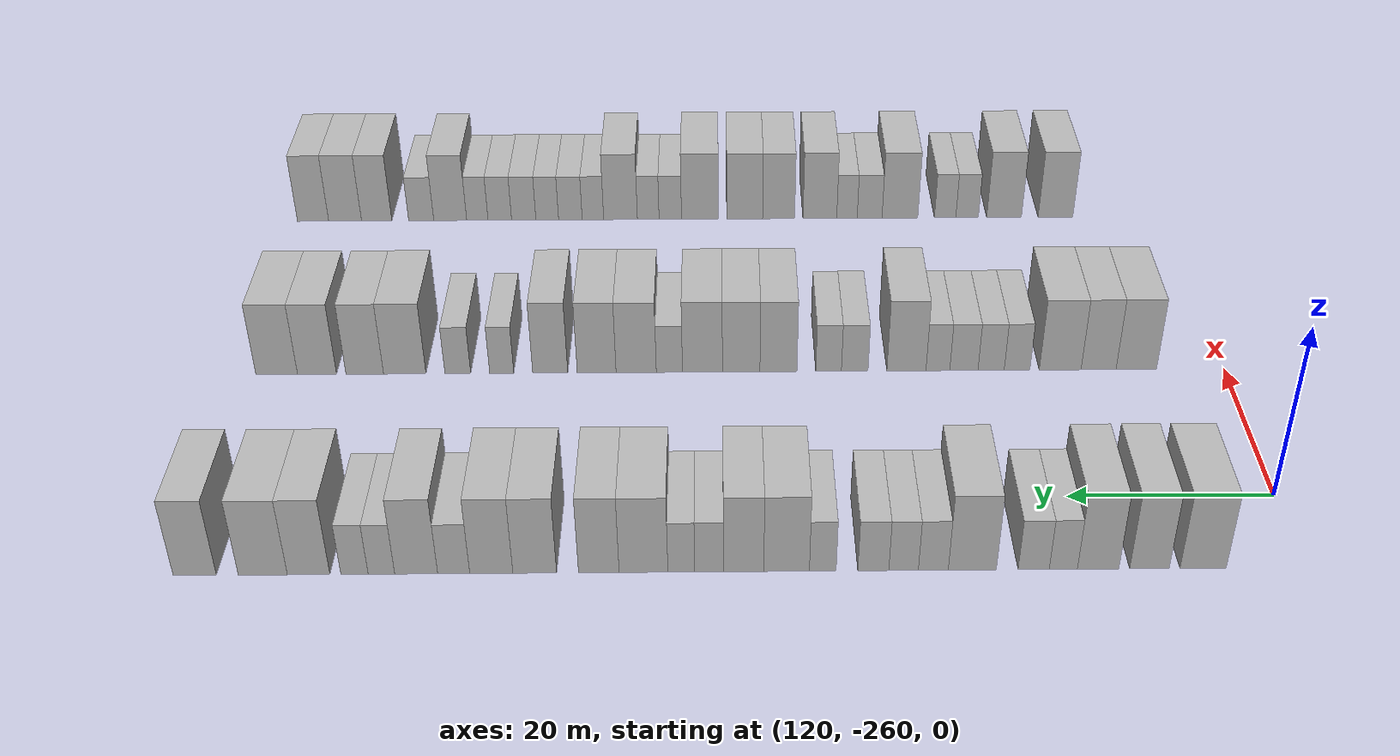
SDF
<sdf version="1.6">
 <world name="default">
  <model name="building_742">
   <static>1</static>
   <pose>115.0000 -250.8697 0 0.000000 0.000000 0.000000</pose>
   <link name="link">
    <pose>0 0 4.50 0 0 0</pose>
    <collision name="collision"><geometry><box><size>10.0000 4.2609 9.0000</size></box></geometry></collision>
    <visual name="visual">
     <cast_shadows>0</cast_shadows>
     <geometry><box><size>10.0000 4.2609 9.0000</size></box></geometry>
     <material>
      <script>
       <uri>model://HANNAS_wall/materials/scripts</uri>
       <uri>model://HANNAS_wall/materials/textures</uri>
       <name>vrc/HANNAS_wall</name>
      </script>
     </material>
    </visual>
   </link>
  </model>
  <model name="building_743">
   <static>1</static>
   <pose>115.0000 -245.9235 0 0.000000 0.000000 0.000000</pose>
   <link name="link">
    <pose>0 0 4.50 0 0 0</pose>
    <collision name="collision"><geometry><box><size>10.0000 3.6315 9.0000</size></box></geometry></collision>
    <visual name="visual">
     <cast_shadows>0</cast_shadows>
     <geometry><box><size>10.0000 3.6315 9.0000</size></box></geometry>
     <material>
      <script>
       <uri>model://HANNAS_wall/materials/scripts</uri>
       <uri>model://HANNAS_wall/materials/textures</uri>
       <name>vrc/HANNAS_wall</name>
      </script>
     </material>
    </visual>
   </link>
  </model>
  <model name="building_744">
   <static>1</static>
   <pose>115.0000 -241.2004 0 0.000000 0.000000 0.000000</pose>
   <link name="link">
    <pose>0 0 4.50 0 0 0</pose>
    <collision name="collision"><geometry><box><size>10.0000 3.8149 9.0000</size></box></geometry></collision>
    <visual name="visual">
     <cast_shadows>0</cast_shadows>
     <geometry><box><size>10.0000 3.8149 9.0000</size></box></geometry>
     <material>
      <script>
       <uri>model://HANNAS_wall/materials/scripts</uri>
       <uri>model://HANNAS_wall/materials/textures</uri>
       <name>vrc/HANNAS_wall</name>
      </script>
     </material>
    </visual>
   </link>
  </model>
  <model name="building_745">
   <static>1</static>
   <pose>115.0000 -237.9975 0 0.000000 0.000000 0.000000</pose>
   <link name="link">
    <pose>0 0 3.00 0 0 0</pose>
    <collision name="collision"><geometry><box><size>10.0000 2.5910 6.0000</size></box></geometry></collision>
    <visual name="visual">
     <cast_shadows>0</cast_shadows>
     <geometry><box><size>10.0000 2.5910 6.0000</size></box></geometry>
     <material>
      <script>
       <uri>model://HANNAS_wall/materials/scripts</uri>
       <uri>model://HANNAS_wall/materials/textures</uri>
       <name>vrc/HANNAS_wall</name>
      </script>
     </material>
    </visual>
   </link>
  </model>
  <model name="building_746">
   <static>1</static>
   <pose>115.0000 -235.2722 0 0.000000 0.000000 0.000000</pose>
   <link name="link">
    <pose>0 0 3.00 0 0 0</pose>
    <collision name="collision"><geometry><box><size>10.0000 2.8596 6.0000</size></box></geometry></collision>
    <visual name="visual">
     <cast_shadows>0</cast_shadows>
     <geometry><box><size>10.0000 2.8596 6.0000</size></box></geometry>
     <material>
      <script>
       <uri>model://HANNAS_wall/materials/scripts</uri>
       <uri>model://HANNAS_wall/materials/textures</uri>
       <name>vrc/HANNAS_wall</name>
      </script>
     </material>
    </visual>
   </link>
  </model>
  <model name="building_747">
   <static>1</static>
   <pose>115.0000 -229.6313 0 0.000000 0.000000 0.000000</pose>
   <link name="link">
    <pose>0 0 4.50 0 0 0</pose>
    <collision name="collision"><geometry><box><size>10.0000 4.4220 9.0000</size></box></geometry></collision>
    <visual name="visual">
     <cast_shadows>0</cast_shadows>
     <geometry><box><size>10.0000 4.4220 9.0000</size></box></geometry>
     <material>
      <script>
       <uri>model://HANNAS_wall/materials/scripts</uri>
       <uri>model://HANNAS_wall/materials/textures</uri>
       <name>vrc/HANNAS_wall</name>
      </script>
     </material>
    </visual>
   </link>
  </model>
  <model name="building_748">
   <static>1</static>
   <pose>115.0000 -226.0481 0 0.000000 0.000000 0.000000</pose>
   <link name="link">
    <pose>0 0 3.00 0 0 0</pose>
    <collision name="collision"><geometry><box><size>10.0000 2.7444 6.0000</size></box></geometry></collision>
    <visual name="visual">
     <cast_shadows>0</cast_shadows>
     <geometry><box><size>10.0000 2.7444 6.0000</size></box></geometry>
     <material>
      <script>
       <uri>model://HANNAS_wall/materials/scripts</uri>
       <uri>model://HANNAS_wall/materials/textures</uri>
       <name>vrc/HANNAS_wall</name>
      </script>
     </material>
    </visual>
   </link>
  </model>
  <model name="building_749">
   <static>1</static>
   <pose>115.0000 -223.3166 0 0.000000 0.000000 0.000000</pose>
   <link name="link">
    <pose>0 0 3.00 0 0 0</pose>
    <collision name="collision"><geometry><box><size>10.0000 2.7187 6.0000</size></box></geometry></collision>
    <visual name="visual">
     <cast_shadows>0</cast_shadows>
     <geometry><box><size>10.0000 2.7187 6.0000</size></box></geometry>
     <material>
      <script>
       <uri>model://HANNAS_wall/materials/scripts</uri>
       <uri>model://HANNAS_wall/materials/textures</uri>
       <name>vrc/HANNAS_wall</name>
      </script>
     </material>
    </visual>
   </link>
  </model>
  <model name="building_750">
   <static>1</static>
   <pose>115.0000 -220.5386 0 0.000000 0.000000 0.000000</pose>
   <link name="link">
    <pose>0 0 3.00 0 0 0</pose>
    <collision name="collision"><geometry><box><size>10.0000 2.8372 6.0000</size></box></geometry></collision>
    <visual name="visual">
     <cast_shadows>0</cast_shadows>
     <geometry><box><size>10.0000 2.8372 6.0000</size></box></geometry>
     <material>
      <script>
       <uri>model://HANNAS_wall/materials/scripts</uri>
       <uri>model://HANNAS_wall/materials/textures</uri>
       <name>vrc/HANNAS_wall</name>
      </script>
     </material>
    </visual>
   </link>
  </model>
  <model name="building_751">
   <static>1</static>
   <pose>115.0000 -215.8957 0 0.000000 0.000000 0.000000</pose>
   <link name="link">
    <pose>0 0 3.00 0 0 0</pose>
    <collision name="collision"><geometry><box><size>10.0000 2.4486 6.0000</size></box></geometry></collision>
    <visual name="visual">
     <cast_shadows>0</cast_shadows>
     <geometry><box><size>10.0000 2.4486 6.0000</size></box></geometry>
     <material>
      <script>
       <uri>model://HANNAS_wall/materials/scripts</uri>
       <uri>model://HANNAS_wall/materials/textures</uri>
       <name>vrc/HANNAS_wall</name>
      </script>
     </material>
    </visual>
   </link>
  </model>
  <model name="building_752">
   <static>1</static>
   <pose>115.0000 -212.5783 0 0.000000 0.000000 0.000000</pose>
   <link name="link">
    <pose>0 0 4.50 0 0 0</pose>
    <collision name="collision"><geometry><box><size>10.0000 4.1863 9.0000</size></box></geometry></collision>
    <visual name="visual">
     <cast_shadows>0</cast_shadows>
     <geometry><box><size>10.0000 4.1863 9.0000</size></box></geometry>
     <material>
      <script>
       <uri>model://HANNAS_wall/materials/scripts</uri>
       <uri>model://HANNAS_wall/materials/textures</uri>
       <name>vrc/HANNAS_wall</name>
      </script>
     </material>
    </visual>
   </link>
  </model>
  <model name="building_753">
   <static>1</static>
   <pose>115.0000 -208.6427 0 0.000000 0.000000 0.000000</pose>
   <link name="link">
    <pose>0 0 4.50 0 0 0</pose>
    <collision name="collision"><geometry><box><size>10.0000 3.6849 9.0000</size></box></geometry></collision>
    <visual name="visual">
     <cast_shadows>0</cast_shadows>
     <geometry><box><size>10.0000 3.6849 9.0000</size></box></geometry>
     <material>
      <script>
       <uri>model://HANNAS_wall/materials/scripts</uri>
       <uri>model://HANNAS_wall/materials/textures</uri>
       <name>vrc/HANNAS_wall</name>
      </script>
     </material>
    </visual>
   </link>
  </model>
  <model name="building_754">
   <static>1</static>
   <pose>115.0000 -205.4805 0 0.000000 0.000000 0.000000</pose>
   <link name="link">
    <pose>0 0 3.00 0 0 0</pose>
    <collision name="collision"><geometry><box><size>10.0000 2.6394 6.0000</size></box></geometry></collision>
    <visual name="visual">
     <cast_shadows>0</cast_shadows>
     <geometry><box><size>10.0000 2.6394 6.0000</size></box></geometry>
     <material>
      <script>
       <uri>model://HANNAS_wall/materials/scripts</uri>
       <uri>model://HANNAS_wall/materials/textures</uri>
       <name>vrc/HANNAS_wall</name>
      </script>
     </material>
    </visual>
   </link>
  </model>
  <model name="building_755">
   <static>1</static>
   <pose>115.0000 -202.9286 0 0.000000 0.000000 0.000000</pose>
   <link name="link">
    <pose>0 0 3.00 0 0 0</pose>
    <collision name="collision"><geometry><box><size>10.0000 2.4644 6.0000</size></box></geometry></collision>
    <visual name="visual">
     <cast_shadows>0</cast_shadows>
     <geometry><box><size>10.0000 2.4644 6.0000</size></box></geometry>
     <material>
      <script>
       <uri>model://HANNAS_wall/materials/scripts</uri>
       <uri>model://HANNAS_wall/materials/textures</uri>
       <name>vrc/HANNAS_wall</name>
      </script>
     </material>
    </visual>
   </link>
  </model>
  <model name="building_756">
   <static>1</static>
   <pose>115.0000 -199.4611 0 0.000000 0.000000 0.000000</pose>
   <link name="link">
    <pose>0 0 4.50 0 0 0</pose>
    <collision name="collision"><geometry><box><size>10.0000 4.4707 9.0000</size></box></geometry></collision>
    <visual name="visual">
     <cast_shadows>0</cast_shadows>
     <geometry><box><size>10.0000 4.4707 9.0000</size></box></geometry>
     <material>
      <script>
       <uri>model://HANNAS_wall/materials/scripts</uri>
       <uri>model://HANNAS_wall/materials/textures</uri>
       <name>vrc/HANNAS_wall</name>
      </script>
     </material>
    </visual>
   </link>
  </model>
  <model name="building_757">
   <static>1</static>
   <pose>115.0000 -195.3677 0 0.000000 0.000000 0.000000</pose>
   <link name="link">
    <pose>0 0 4.50 0 0 0</pose>
    <collision name="collision"><geometry><box><size>10.0000 3.7162 9.0000</size></box></geometry></collision>
    <visual name="visual">
     <cast_shadows>0</cast_shadows>
     <geometry><box><size>10.0000 3.7162 9.0000</size></box></geometry>
     <material>
      <script>
       <uri>model://HANNAS_wall/materials/scripts</uri>
       <uri>model://HANNAS_wall/materials/textures</uri>
       <name>vrc/HANNAS_wall</name>
      </script>
     </material>
    </visual>
   </link>
  </model>
  <model name="building_758">
   <static>1</static>
   <pose>115.0000 -189.5050 0 0.000000 0.000000 0.000000</pose>
   <link name="link">
    <pose>0 0 4.50 0 0 0</pose>
    <collision name="collision"><geometry><box><size>10.0000 4.0091 9.0000</size></box></geometry></collision>
    <visual name="visual">
     <cast_shadows>0</cast_shadows>
     <geometry><box><size>10.0000 4.0091 9.0000</size></box></geometry>
     <material>
      <script>
       <uri>model://HANNAS_wall/materials/scripts</uri>
       <uri>model://HANNAS_wall/materials/textures</uri>
       <name>vrc/HANNAS_wall</name>
      </script>
     </material>
    </visual>
   </link>
  </model>
  <model name="building_759">
   <static>1</static>
   <pose>115.0000 -185.5270 0 0.000000 0.000000 0.000000</pose>
   <link name="link">
    <pose>0 0 4.50 0 0 0</pose>
    <collision name="collision"><geometry><box><size>10.0000 3.9469 9.0000</size></box></geometry></collision>
    <visual name="visual">
     <cast_shadows>0</cast_shadows>
     <geometry><box><size>10.0000 3.9469 9.0000</size></box></geometry>
     <material>
      <script>
       <uri>model://HANNAS_wall/materials/scripts</uri>
       <uri>model://HANNAS_wall/materials/textures</uri>
       <name>vrc/HANNAS_wall</name>
      </script>
     </material>
    </visual>
   </link>
  </model>
  <model name="building_760">
   <static>1</static>
   <pose>115.0000 -182.0898 0 0.000000 0.000000 0.000000</pose>
   <link name="link">
    <pose>0 0 3.00 0 0 0</pose>
    <collision name="collision"><geometry><box><size>10.0000 2.9276 6.0000</size></box></geometry></collision>
    <visual name="visual">
     <cast_shadows>0</cast_shadows>
     <geometry><box><size>10.0000 2.9276 6.0000</size></box></geometry>
     <material>
      <script>
       <uri>model://HANNAS_wall/materials/scripts</uri>
       <uri>model://HANNAS_wall/materials/textures</uri>
       <name>vrc/HANNAS_wall</name>
      </script>
     </material>
    </visual>
   </link>
  </model>
  <model name="building_761">
   <static>1</static>
   <pose>115.0000 -178.6595 0 0.000000 0.000000 0.000000</pose>
   <link name="link">
    <pose>0 0 4.50 0 0 0</pose>
    <collision name="collision"><geometry><box><size>10.0000 3.9330 9.0000</size></box></geometry></collision>
    <visual name="visual">
     <cast_shadows>0</cast_shadows>
     <geometry><box><size>10.0000 3.9330 9.0000</size></box></geometry>
     <material>
      <script>
       <uri>model://HANNAS_wall/materials/scripts</uri>
       <uri>model://HANNAS_wall/materials/textures</uri>
       <name>vrc/HANNAS_wall</name>
      </script>
     </material>
    </visual>
   </link>
  </model>
  <model name="building_762">
   <static>1</static>
   <pose>115.0000 -175.4794 0 0.000000 0.000000 0.000000</pose>
   <link name="link">
    <pose>0 0 3.00 0 0 0</pose>
    <collision name="collision"><geometry><box><size>10.0000 2.4271 6.0000</size></box></geometry></collision>
    <visual name="visual">
     <cast_shadows>0</cast_shadows>
     <geometry><box><size>10.0000 2.4271 6.0000</size></box></geometry>
     <material>
      <script>
       <uri>model://HANNAS_wall/materials/scripts</uri>
       <uri>model://HANNAS_wall/materials/textures</uri>
       <name>vrc/HANNAS_wall</name>
      </script>
     </material>
    </visual>
   </link>
  </model>
  <model name="building_763">
   <static>1</static>
   <pose>115.0000 -173.0204 0 0.000000 0.000000 0.000000</pose>
   <link name="link">
    <pose>0 0 3.00 0 0 0</pose>
    <collision name="collision"><geometry><box><size>10.0000 2.4908 6.0000</size></box></geometry></collision>
    <visual name="visual">
     <cast_shadows>0</cast_shadows>
     <geometry><box><size>10.0000 2.4908 6.0000</size></box></geometry>
     <material>
      <script>
       <uri>model://HANNAS_wall/materials/scripts</uri>
       <uri>model://HANNAS_wall/materials/textures</uri>
       <name>vrc/HANNAS_wall</name>
      </script>
     </material>
    </visual>
   </link>
  </model>
  <model name="building_764">
   <static>1</static>
   <pose>115.0000 -168.8340 0 0.000000 0.000000 0.000000</pose>
   <link name="link">
    <pose>0 0 4.50 0 0 0</pose>
    <collision name="collision"><geometry><box><size>10.0000 3.8819 9.0000</size></box></geometry></collision>
    <visual name="visual">
     <cast_shadows>0</cast_shadows>
     <geometry><box><size>10.0000 3.8819 9.0000</size></box></geometry>
     <material>
      <script>
       <uri>model://HANNAS_wall/materials/scripts</uri>
       <uri>model://HANNAS_wall/materials/textures</uri>
       <name>vrc/HANNAS_wall</name>
      </script>
     </material>
    </visual>
   </link>
  </model>
  <model name="building_765">
   <static>1</static>
   <pose>115.0000 -164.6539 0 0.000000 0.000000 0.000000</pose>
   <link name="link">
    <pose>0 0 4.50 0 0 0</pose>
    <collision name="collision"><geometry><box><size>10.0000 4.4783 9.0000</size></box></geometry></collision>
    <visual name="visual">
     <cast_shadows>0</cast_shadows>
     <geometry><box><size>10.0000 4.4783 9.0000</size></box></geometry>
     <material>
      <script>
       <uri>model://HANNAS_wall/materials/scripts</uri>
       <uri>model://HANNAS_wall/materials/textures</uri>
       <name>vrc/HANNAS_wall</name>
      </script>
     </material>
    </visual>
   </link>
  </model>
  <model name="building_766">
   <static>1</static>
   <pose>115.0000 -158.4429 0 0.000000 0.000000 0.000000</pose>
   <link name="link">
    <pose>0 0 4.50 0 0 0</pose>
    <collision name="collision"><geometry><box><size>10.0000 3.9437 9.0000</size></box></geometry></collision>
    <visual name="visual">
     <cast_shadows>0</cast_shadows>
     <geometry><box><size>10.0000 3.9437 9.0000</size></box></geometry>
     <material>
      <script>
       <uri>model://HANNAS_wall/materials/scripts</uri>
       <uri>model://HANNAS_wall/materials/textures</uri>
       <name>vrc/HANNAS_wall</name>
      </script>
     </material>
    </visual>
   </link>
  </model>
  <model name="building_974">
   <static>1</static>
   <pose>145.0000 -250.6786 0 0.000000 0.000000 0.000000</pose>
   <link name="link">
    <pose>0 0 4.50 0 0 0</pose>
    <collision name="collision"><geometry><box><size>10.0000 4.3003 9.0000</size></box></geometry></collision>
    <visual name="visual">
     <cast_shadows>0</cast_shadows>
     <geometry><box><size>10.0000 4.3003 9.0000</size></box></geometry>
     <material>
      <script>
       <uri>model://HANNAS_wall/materials/scripts</uri>
       <uri>model://HANNAS_wall/materials/textures</uri>
       <name>vrc/HANNAS_wall</name>
      </script>
     </material>
    </visual>
   </link>
  </model>
  <model name="building_975">
   <static>1</static>
   <pose>145.0000 -246.6720 0 0.000000 0.000000 0.000000</pose>
   <link name="link">
    <pose>0 0 4.50 0 0 0</pose>
    <collision name="collision"><geometry><box><size>10.0000 3.7129 9.0000</size></box></geometry></collision>
    <visual name="visual">
     <cast_shadows>0</cast_shadows>
     <geometry><box><size>10.0000 3.7129 9.0000</size></box></geometry>
     <material>
      <script>
       <uri>model://HANNAS_wall/materials/scripts</uri>
       <uri>model://HANNAS_wall/materials/textures</uri>
       <name>vrc/HANNAS_wall</name>
      </script>
     </material>
    </visual>
   </link>
  </model>
  <model name="building_976">
   <static>1</static>
   <pose>145.0000 -242.6016 0 0.000000 0.000000 0.000000</pose>
   <link name="link">
    <pose>0 0 4.50 0 0 0</pose>
    <collision name="collision"><geometry><box><size>10.0000 4.4280 9.0000</size></box></geometry></collision>
    <visual name="visual">
     <cast_shadows>0</cast_shadows>
     <geometry><box><size>10.0000 4.4280 9.0000</size></box></geometry>
     <material>
      <script>
       <uri>model://HANNAS_wall/materials/scripts</uri>
       <uri>model://HANNAS_wall/materials/textures</uri>
       <name>vrc/HANNAS_wall</name>
      </script>
     </material>
    </visual>
   </link>
  </model>
  <model name="building_977">
   <static>1</static>
   <pose>145.0000 -238.0266 0 0.000000 0.000000 0.000000</pose>
   <link name="link">
    <pose>0 0 3.00 0 0 0</pose>
    <collision name="collision"><geometry><box><size>10.0000 2.7218 6.0000</size></box></geometry></collision>
    <visual name="visual">
     <cast_shadows>0</cast_shadows>
     <geometry><box><size>10.0000 2.7218 6.0000</size></box></geometry>
     <material>
      <script>
       <uri>model://HANNAS_wall/materials/scripts</uri>
       <uri>model://HANNAS_wall/materials/textures</uri>
       <name>vrc/HANNAS_wall</name>
      </script>
     </material>
    </visual>
   </link>
  </model>
  <model name="building_978">
   <static>1</static>
   <pose>145.0000 -235.2754 0 0.000000 0.000000 0.000000</pose>
   <link name="link">
    <pose>0 0 3.00 0 0 0</pose>
    <collision name="collision"><geometry><box><size>10.0000 2.7806 6.0000</size></box></geometry></collision>
    <visual name="visual">
     <cast_shadows>0</cast_shadows>
     <geometry><box><size>10.0000 2.7806 6.0000</size></box></geometry>
     <material>
      <script>
       <uri>model://HANNAS_wall/materials/scripts</uri>
       <uri>model://HANNAS_wall/materials/textures</uri>
       <name>vrc/HANNAS_wall</name>
      </script>
     </material>
    </visual>
   </link>
  </model>
  <model name="building_979">
   <static>1</static>
   <pose>145.0000 -232.3934 0 0.000000 0.000000 0.000000</pose>
   <link name="link">
    <pose>0 0 3.00 0 0 0</pose>
    <collision name="collision"><geometry><box><size>10.0000 2.9834 6.0000</size></box></geometry></collision>
    <visual name="visual">
     <cast_shadows>0</cast_shadows>
     <geometry><box><size>10.0000 2.9834 6.0000</size></box></geometry>
     <material>
      <script>
       <uri>model://HANNAS_wall/materials/scripts</uri>
       <uri>model://HANNAS_wall/materials/textures</uri>
       <name>vrc/HANNAS_wall</name>
      </script>
     </material>
    </visual>
   </link>
  </model>
  <model name="building_980">
   <static>1</static>
   <pose>145.0000 -229.6385 0 0.000000 0.000000 0.000000</pose>
   <link name="link">
    <pose>0 0 3.00 0 0 0</pose>
    <collision name="collision"><geometry><box><size>10.0000 2.5264 6.0000</size></box></geometry></collision>
    <visual name="visual">
     <cast_shadows>0</cast_shadows>
     <geometry><box><size>10.0000 2.5264 6.0000</size></box></geometry>
     <material>
      <script>
       <uri>model://HANNAS_wall/materials/scripts</uri>
       <uri>model://HANNAS_wall/materials/textures</uri>
       <name>vrc/HANNAS_wall</name>
      </script>
     </material>
    </visual>
   </link>
  </model>
  <model name="building_981">
   <static>1</static>
   <pose>145.0000 -226.3077 0 0.000000 0.000000 0.000000</pose>
   <link name="link">
    <pose>0 0 4.50 0 0 0</pose>
    <collision name="collision"><geometry><box><size>10.0000 4.1351 9.0000</size></box></geometry></collision>
    <visual name="visual">
     <cast_shadows>0</cast_shadows>
     <geometry><box><size>10.0000 4.1351 9.0000</size></box></geometry>
     <material>
      <script>
       <uri>model://HANNAS_wall/materials/scripts</uri>
       <uri>model://HANNAS_wall/materials/textures</uri>
       <name>vrc/HANNAS_wall</name>
      </script>
     </material>
    </visual>
   </link>
  </model>
  <model name="building_982">
   <static>1</static>
   <pose>145.0000 -220.8311 0 0.000000 0.000000 0.000000</pose>
   <link name="link">
    <pose>0 0 3.00 0 0 0</pose>
    <collision name="collision"><geometry><box><size>10.0000 2.8182 6.0000</size></box></geometry></collision>
    <visual name="visual">
     <cast_shadows>0</cast_shadows>
     <geometry><box><size>10.0000 2.8182 6.0000</size></box></geometry>
     <material>
      <script>
       <uri>model://HANNAS_wall/materials/scripts</uri>
       <uri>model://HANNAS_wall/materials/textures</uri>
       <name>vrc/HANNAS_wall</name>
      </script>
     </material>
    </visual>
   </link>
  </model>
  <model name="building_983">
   <static>1</static>
   <pose>145.0000 -218.0703 0 0.000000 0.000000 0.000000</pose>
   <link name="link">
    <pose>0 0 3.00 0 0 0</pose>
    <collision name="collision"><geometry><box><size>10.0000 2.7033 6.0000</size></box></geometry></collision>
    <visual name="visual">
     <cast_shadows>0</cast_shadows>
     <geometry><box><size>10.0000 2.7033 6.0000</size></box></geometry>
     <material>
      <script>
       <uri>model://HANNAS_wall/materials/scripts</uri>
       <uri>model://HANNAS_wall/materials/textures</uri>
       <name>vrc/HANNAS_wall</name>
      </script>
     </material>
    </visual>
   </link>
  </model>
  <model name="building_984">
   <static>1</static>
   <pose>145.0000 -212.7624 0 0.000000 0.000000 0.000000</pose>
   <link name="link">
    <pose>0 0 4.50 0 0 0</pose>
    <collision name="collision"><geometry><box><size>10.0000 3.9125 9.0000</size></box></geometry></collision>
    <visual name="visual">
     <cast_shadows>0</cast_shadows>
     <geometry><box><size>10.0000 3.9125 9.0000</size></box></geometry>
     <material>
      <script>
       <uri>model://HANNAS_wall/materials/scripts</uri>
       <uri>model://HANNAS_wall/materials/textures</uri>
       <name>vrc/HANNAS_wall</name>
      </script>
     </material>
    </visual>
   </link>
  </model>
  <model name="building_985">
   <static>1</static>
   <pose>145.0000 -208.8247 0 0.000000 0.000000 0.000000</pose>
   <link name="link">
    <pose>0 0 4.50 0 0 0</pose>
    <collision name="collision"><geometry><box><size>10.0000 3.9630 9.0000</size></box></geometry></collision>
    <visual name="visual">
     <cast_shadows>0</cast_shadows>
     <geometry><box><size>10.0000 3.9630 9.0000</size></box></geometry>
     <material>
      <script>
       <uri>model://HANNAS_wall/materials/scripts</uri>
       <uri>model://HANNAS_wall/materials/textures</uri>
       <name>vrc/HANNAS_wall</name>
      </script>
     </material>
    </visual>
   </link>
  </model>
  <model name="building_986">
   <static>1</static>
   <pose>145.0000 -204.7329 0 0.000000 0.000000 0.000000</pose>
   <link name="link">
    <pose>0 0 4.50 0 0 0</pose>
    <collision name="collision"><geometry><box><size>10.0000 4.2206 9.0000</size></box></geometry></collision>
    <visual name="visual">
     <cast_shadows>0</cast_shadows>
     <geometry><box><size>10.0000 4.2206 9.0000</size></box></geometry>
     <material>
      <script>
       <uri>model://HANNAS_wall/materials/scripts</uri>
       <uri>model://HANNAS_wall/materials/textures</uri>
       <name>vrc/HANNAS_wall</name>
      </script>
     </material>
    </visual>
   </link>
  </model>
  <model name="building_987">
   <static>1</static>
   <pose>145.0000 -201.2403 0 0.000000 0.000000 0.000000</pose>
   <link name="link">
    <pose>0 0 3.00 0 0 0</pose>
    <collision name="collision"><geometry><box><size>10.0000 2.7647 6.0000</size></box></geometry></collision>
    <visual name="visual">
     <cast_shadows>0</cast_shadows>
     <geometry><box><size>10.0000 2.7647 6.0000</size></box></geometry>
     <material>
      <script>
       <uri>model://HANNAS_wall/materials/scripts</uri>
       <uri>model://HANNAS_wall/materials/textures</uri>
       <name>vrc/HANNAS_wall</name>
      </script>
     </material>
    </visual>
   </link>
  </model>
  <model name="building_988">
   <static>1</static>
   <pose>145.0000 -197.7340 0 0.000000 0.000000 0.000000</pose>
   <link name="link">
    <pose>0 0 4.50 0 0 0</pose>
    <collision name="collision"><geometry><box><size>10.0000 4.2479 9.0000</size></box></geometry></collision>
    <visual name="visual">
     <cast_shadows>0</cast_shadows>
     <geometry><box><size>10.0000 4.2479 9.0000</size></box></geometry>
     <material>
      <script>
       <uri>model://HANNAS_wall/materials/scripts</uri>
       <uri>model://HANNAS_wall/materials/textures</uri>
       <name>vrc/HANNAS_wall</name>
      </script>
     </material>
    </visual>
   </link>
  </model>
  <model name="building_989">
   <static>1</static>
   <pose>145.0000 -193.5619 0 0.000000 0.000000 0.000000</pose>
   <link name="link">
    <pose>0 0 4.50 0 0 0</pose>
    <collision name="collision"><geometry><box><size>10.0000 4.0963 9.0000</size></box></geometry></collision>
    <visual name="visual">
     <cast_shadows>0</cast_shadows>
     <geometry><box><size>10.0000 4.0963 9.0000</size></box></geometry>
     <material>
      <script>
       <uri>model://HANNAS_wall/materials/scripts</uri>
       <uri>model://HANNAS_wall/materials/textures</uri>
       <name>vrc/HANNAS_wall</name>
      </script>
     </material>
    </visual>
   </link>
  </model>
  <model name="building_990">
   <static>1</static>
   <pose>145.0000 -188.6642 0 0.000000 0.000000 0.000000</pose>
   <link name="link">
    <pose>0 0 4.50 0 0 0</pose>
    <collision name="collision"><geometry><box><size>10.0000 3.6991 9.0000</size></box></geometry></collision>
    <visual name="visual">
     <cast_shadows>0</cast_shadows>
     <geometry><box><size>10.0000 3.6991 9.0000</size></box></geometry>
     <material>
      <script>
       <uri>model://HANNAS_wall/materials/scripts</uri>
       <uri>model://HANNAS_wall/materials/textures</uri>
       <name>vrc/HANNAS_wall</name>
      </script>
     </material>
    </visual>
   </link>
  </model>
  <model name="building_991">
   <static>1</static>
   <pose>145.0000 -183.5448 0 0.000000 0.000000 0.000000</pose>
   <link name="link">
    <pose>0 0 3.00 0 0 0</pose>
    <collision name="collision"><geometry><box><size>10.0000 2.5396 6.0000</size></box></geometry></collision>
    <visual name="visual">
     <cast_shadows>0</cast_shadows>
     <geometry><box><size>10.0000 2.5396 6.0000</size></box></geometry>
     <material>
      <script>
       <uri>model://HANNAS_wall/materials/scripts</uri>
       <uri>model://HANNAS_wall/materials/textures</uri>
       <name>vrc/HANNAS_wall</name>
      </script>
     </material>
    </visual>
   </link>
  </model>
  <model name="building_992">
   <static>1</static>
   <pose>145.0000 -178.9159 0 0.000000 0.000000 0.000000</pose>
   <link name="link">
    <pose>0 0 3.00 0 0 0</pose>
    <collision name="collision"><geometry><box><size>10.0000 2.7183 6.0000</size></box></geometry></collision>
    <visual name="visual">
     <cast_shadows>0</cast_shadows>
     <geometry><box><size>10.0000 2.7183 6.0000</size></box></geometry>
     <material>
      <script>
       <uri>model://HANNAS_wall/materials/scripts</uri>
       <uri>model://HANNAS_wall/materials/textures</uri>
       <name>vrc/HANNAS_wall</name>
      </script>
     </material>
    </visual>
   </link>
  </model>
  <model name="building_993">
   <static>1</static>
   <pose>145.0000 -173.3203 0 0.000000 0.000000 0.000000</pose>
   <link name="link">
    <pose>0 0 4.50 0 0 0</pose>
    <collision name="collision"><geometry><box><size>10.0000 4.4729 9.0000</size></box></geometry></collision>
    <visual name="visual">
     <cast_shadows>0</cast_shadows>
     <geometry><box><size>10.0000 4.4729 9.0000</size></box></geometry>
     <material>
      <script>
       <uri>model://HANNAS_wall/materials/scripts</uri>
       <uri>model://HANNAS_wall/materials/textures</uri>
       <name>vrc/HANNAS_wall</name>
      </script>
     </material>
    </visual>
   </link>
  </model>
  <model name="building_994">
   <static>1</static>
   <pose>145.0000 -169.1063 0 0.000000 0.000000 0.000000</pose>
   <link name="link">
    <pose>0 0 4.50 0 0 0</pose>
    <collision name="collision"><geometry><box><size>10.0000 3.9550 9.0000</size></box></geometry></collision>
    <visual name="visual">
     <cast_shadows>0</cast_shadows>
     <geometry><box><size>10.0000 3.9550 9.0000</size></box></geometry>
     <material>
      <script>
       <uri>model://HANNAS_wall/materials/scripts</uri>
       <uri>model://HANNAS_wall/materials/textures</uri>
       <name>vrc/HANNAS_wall</name>
      </script>
     </material>
    </visual>
   </link>
  </model>
  <model name="building_995">
   <static>1</static>
   <pose>145.0000 -164.0794 0 0.000000 0.000000 0.000000</pose>
   <link name="link">
    <pose>0 0 4.50 0 0 0</pose>
    <collision name="collision"><geometry><box><size>10.0000 4.0988 9.0000</size></box></geometry></collision>
    <visual name="visual">
     <cast_shadows>0</cast_shadows>
     <geometry><box><size>10.0000 4.0988 9.0000</size></box></geometry>
     <material>
      <script>
       <uri>model://HANNAS_wall/materials/scripts</uri>
       <uri>model://HANNAS_wall/materials/textures</uri>
       <name>vrc/HANNAS_wall</name>
      </script>
     </material>
    </visual>
   </link>
  </model>
  <model name="building_996">
   <static>1</static>
   <pose>145.0000 -159.8401 0 0.000000 0.000000 0.000000</pose>
   <link name="link">
    <pose>0 0 4.50 0 0 0</pose>
    <collision name="collision"><geometry><box><size>10.0000 4.3799 9.0000</size></box></geometry></collision>
    <visual name="visual">
     <cast_shadows>0</cast_shadows>
     <geometry><box><size>10.0000 4.3799 9.0000</size></box></geometry>
     <material>
      <script>
       <uri>model://HANNAS_wall/materials/scripts</uri>
       <uri>model://HANNAS_wall/materials/textures</uri>
       <name>vrc/HANNAS_wall</name>
      </script>
     </material>
    </visual>
   </link>
  </model>
  <model name="building_1207">
   <static>1</static>
   <pose>175.0000 -246.9235 0 0.000000 0.000000 0.000000</pose>
   <link name="link">
    <pose>0 0 4.50 0 0 0</pose>
    <collision name="collision"><geometry><box><size>10.0000 4.1657 9.0000</size></box></geometry></collision>
    <visual name="visual">
     <cast_shadows>0</cast_shadows>
     <geometry><box><size>10.0000 4.1657 9.0000</size></box></geometry>
     <material>
      <script>
       <uri>model://HANNAS_wall/materials/scripts</uri>
       <uri>model://HANNAS_wall/materials/textures</uri>
       <name>vrc/HANNAS_wall</name>
      </script>
     </material>
    </visual>
   </link>
  </model>
  <model name="building_1208">
   <static>1</static>
   <pose>175.0000 -240.7575 0 0.000000 0.000000 0.000000</pose>
   <link name="link">
    <pose>0 0 4.50 0 0 0</pose>
    <collision name="collision"><geometry><box><size>10.0000 4.1663 9.0000</size></box></geometry></collision>
    <visual name="visual">
     <cast_shadows>0</cast_shadows>
     <geometry><box><size>10.0000 4.1663 9.0000</size></box></geometry>
     <material>
      <script>
       <uri>model://HANNAS_wall/materials/scripts</uri>
       <uri>model://HANNAS_wall/materials/textures</uri>
       <name>vrc/HANNAS_wall</name>
      </script>
     </material>
    </visual>
   </link>
  </model>
  <model name="building_1209">
   <static>1</static>
   <pose>175.0000 -236.3190 0 0.000000 0.000000 0.000000</pose>
   <link name="link">
    <pose>0 0 3.00 0 0 0</pose>
    <collision name="collision"><geometry><box><size>10.0000 2.7108 6.0000</size></box></geometry></collision>
    <visual name="visual">
     <cast_shadows>0</cast_shadows>
     <geometry><box><size>10.0000 2.7108 6.0000</size></box></geometry>
     <material>
      <script>
       <uri>model://HANNAS_wall/materials/scripts</uri>
       <uri>model://HANNAS_wall/materials/textures</uri>
       <name>vrc/HANNAS_wall</name>
      </script>
     </material>
    </visual>
   </link>
  </model>
  <model name="building_1210">
   <static>1</static>
   <pose>175.0000 -233.6815 0 0.000000 0.000000 0.000000</pose>
   <link name="link">
    <pose>0 0 3.00 0 0 0</pose>
    <collision name="collision"><geometry><box><size>10.0000 2.5641 6.0000</size></box></geometry></collision>
    <visual name="visual">
     <cast_shadows>0</cast_shadows>
     <geometry><box><size>10.0000 2.5641 6.0000</size></box></geometry>
     <material>
      <script>
       <uri>model://HANNAS_wall/materials/scripts</uri>
       <uri>model://HANNAS_wall/materials/textures</uri>
       <name>vrc/HANNAS_wall</name>
      </script>
     </material>
    </visual>
   </link>
  </model>
  <model name="building_1211">
   <static>1</static>
   <pose>175.0000 -228.2572 0 0.000000 0.000000 0.000000</pose>
   <link name="link">
    <pose>0 0 4.50 0 0 0</pose>
    <collision name="collision"><geometry><box><size>10.0000 4.2844 9.0000</size></box></geometry></collision>
    <visual name="visual">
     <cast_shadows>0</cast_shadows>
     <geometry><box><size>10.0000 4.2844 9.0000</size></box></geometry>
     <material>
      <script>
       <uri>model://HANNAS_wall/materials/scripts</uri>
       <uri>model://HANNAS_wall/materials/textures</uri>
       <name>vrc/HANNAS_wall</name>
      </script>
     </material>
    </visual>
   </link>
  </model>
  <model name="building_1212">
   <static>1</static>
   <pose>175.0000 -224.6273 0 0.000000 0.000000 0.000000</pose>
   <link name="link">
    <pose>0 0 3.00 0 0 0</pose>
    <collision name="collision"><geometry><box><size>10.0000 2.9754 6.0000</size></box></geometry></collision>
    <visual name="visual">
     <cast_shadows>0</cast_shadows>
     <geometry><box><size>10.0000 2.9754 6.0000</size></box></geometry>
     <material>
      <script>
       <uri>model://HANNAS_wall/materials/scripts</uri>
       <uri>model://HANNAS_wall/materials/textures</uri>
       <name>vrc/HANNAS_wall</name>
      </script>
     </material>
    </visual>
   </link>
  </model>
  <model name="building_1213">
   <static>1</static>
   <pose>175.0000 -221.9117 0 0.000000 0.000000 0.000000</pose>
   <link name="link">
    <pose>0 0 3.00 0 0 0</pose>
    <collision name="collision"><geometry><box><size>10.0000 2.4558 6.0000</size></box></geometry></collision>
    <visual name="visual">
     <cast_shadows>0</cast_shadows>
     <geometry><box><size>10.0000 2.4558 6.0000</size></box></geometry>
     <material>
      <script>
       <uri>model://HANNAS_wall/materials/scripts</uri>
       <uri>model://HANNAS_wall/materials/textures</uri>
       <name>vrc/HANNAS_wall</name>
      </script>
     </material>
    </visual>
   </link>
  </model>
  <model name="building_1214">
   <static>1</static>
   <pose>175.0000 -218.6623 0 0.000000 0.000000 0.000000</pose>
   <link name="link">
    <pose>0 0 4.50 0 0 0</pose>
    <collision name="collision"><geometry><box><size>10.0000 4.0429 9.0000</size></box></geometry></collision>
    <visual name="visual">
     <cast_shadows>0</cast_shadows>
     <geometry><box><size>10.0000 4.0429 9.0000</size></box></geometry>
     <material>
      <script>
       <uri>model://HANNAS_wall/materials/scripts</uri>
       <uri>model://HANNAS_wall/materials/textures</uri>
       <name>vrc/HANNAS_wall</name>
      </script>
     </material>
    </visual>
   </link>
  </model>
  <model name="building_1215">
   <static>1</static>
   <pose>175.0000 -213.7216 0 0.000000 0.000000 0.000000</pose>
   <link name="link">
    <pose>0 0 4.50 0 0 0</pose>
    <collision name="collision"><geometry><box><size>10.0000 3.8387 9.0000</size></box></geometry></collision>
    <visual name="visual">
     <cast_shadows>0</cast_shadows>
     <geometry><box><size>10.0000 3.8387 9.0000</size></box></geometry>
     <material>
      <script>
       <uri>model://HANNAS_wall/materials/scripts</uri>
       <uri>model://HANNAS_wall/materials/textures</uri>
       <name>vrc/HANNAS_wall</name>
      </script>
     </material>
    </visual>
   </link>
  </model>
  <model name="building_1216">
   <static>1</static>
   <pose>175.0000 -209.6580 0 0.000000 0.000000 0.000000</pose>
   <link name="link">
    <pose>0 0 4.50 0 0 0</pose>
    <collision name="collision"><geometry><box><size>10.0000 4.2885 9.0000</size></box></geometry></collision>
    <visual name="visual">
     <cast_shadows>0</cast_shadows>
     <geometry><box><size>10.0000 4.2885 9.0000</size></box></geometry>
     <material>
      <script>
       <uri>model://HANNAS_wall/materials/scripts</uri>
       <uri>model://HANNAS_wall/materials/textures</uri>
       <name>vrc/HANNAS_wall</name>
      </script>
     </material>
    </visual>
   </link>
  </model>
  <model name="building_1217">
   <static>1</static>
   <pose>175.0000 -204.3056 0 0.000000 0.000000 0.000000</pose>
   <link name="link">
    <pose>0 0 4.50 0 0 0</pose>
    <collision name="collision"><geometry><box><size>10.0000 4.4162 9.0000</size></box></geometry></collision>
    <visual name="visual">
     <cast_shadows>0</cast_shadows>
     <geometry><box><size>10.0000 4.4162 9.0000</size></box></geometry>
     <material>
      <script>
       <uri>model://HANNAS_wall/materials/scripts</uri>
       <uri>model://HANNAS_wall/materials/textures</uri>
       <name>vrc/HANNAS_wall</name>
      </script>
     </material>
    </visual>
   </link>
  </model>
  <model name="building_1218">
   <static>1</static>
   <pose>175.0000 -200.7525 0 0.000000 0.000000 0.000000</pose>
   <link name="link">
    <pose>0 0 3.00 0 0 0</pose>
    <collision name="collision"><geometry><box><size>10.0000 2.6899 6.0000</size></box></geometry></collision>
    <visual name="visual">
     <cast_shadows>0</cast_shadows>
     <geometry><box><size>10.0000 2.6899 6.0000</size></box></geometry>
     <material>
      <script>
       <uri>model://HANNAS_wall/materials/scripts</uri>
       <uri>model://HANNAS_wall/materials/textures</uri>
       <name>vrc/HANNAS_wall</name>
      </script>
     </material>
    </visual>
   </link>
  </model>
  <model name="building_1219">
   <static>1</static>
   <pose>175.0000 -198.1131 0 0.000000 0.000000 0.000000</pose>
   <link name="link">
    <pose>0 0 3.00 0 0 0</pose>
    <collision name="collision"><geometry><box><size>10.0000 2.5890 6.0000</size></box></geometry></collision>
    <visual name="visual">
     <cast_shadows>0</cast_shadows>
     <geometry><box><size>10.0000 2.5890 6.0000</size></box></geometry>
     <material>
      <script>
       <uri>model://HANNAS_wall/materials/scripts</uri>
       <uri>model://HANNAS_wall/materials/textures</uri>
       <name>vrc/HANNAS_wall</name>
      </script>
     </material>
    </visual>
   </link>
  </model>
  <model name="building_1220">
   <static>1</static>
   <pose>175.0000 -194.8032 0 0.000000 0.000000 0.000000</pose>
   <link name="link">
    <pose>0 0 4.50 0 0 0</pose>
    <collision name="collision"><geometry><box><size>10.0000 4.0308 9.0000</size></box></geometry></collision>
    <visual name="visual">
     <cast_shadows>0</cast_shadows>
     <geometry><box><size>10.0000 4.0308 9.0000</size></box></geometry>
     <material>
      <script>
       <uri>model://HANNAS_wall/materials/scripts</uri>
       <uri>model://HANNAS_wall/materials/textures</uri>
       <name>vrc/HANNAS_wall</name>
      </script>
     </material>
    </visual>
   </link>
  </model>
  <model name="building_1221">
   <static>1</static>
   <pose>175.0000 -191.5022 0 0.000000 0.000000 0.000000</pose>
   <link name="link">
    <pose>0 0 3.00 0 0 0</pose>
    <collision name="collision"><geometry><box><size>10.0000 2.5710 6.0000</size></box></geometry></collision>
    <visual name="visual">
     <cast_shadows>0</cast_shadows>
     <geometry><box><size>10.0000 2.5710 6.0000</size></box></geometry>
     <material>
      <script>
       <uri>model://HANNAS_wall/materials/scripts</uri>
       <uri>model://HANNAS_wall/materials/textures</uri>
       <name>vrc/HANNAS_wall</name>
      </script>
     </material>
    </visual>
   </link>
  </model>
  <model name="building_1222">
   <static>1</static>
   <pose>175.0000 -188.8071 0 0.000000 0.000000 0.000000</pose>
   <link name="link">
    <pose>0 0 3.00 0 0 0</pose>
    <collision name="collision"><geometry><box><size>10.0000 2.8193 6.0000</size></box></geometry></collision>
    <visual name="visual">
     <cast_shadows>0</cast_shadows>
     <geometry><box><size>10.0000 2.8193 6.0000</size></box></geometry>
     <material>
      <script>
       <uri>model://HANNAS_wall/materials/scripts</uri>
       <uri>model://HANNAS_wall/materials/textures</uri>
       <name>vrc/HANNAS_wall</name>
      </script>
     </material>
    </visual>
   </link>
  </model>
  <model name="building_1223">
   <static>1</static>
   <pose>175.0000 -186.0409 0 0.000000 0.000000 0.000000</pose>
   <link name="link">
    <pose>0 0 3.00 0 0 0</pose>
    <collision name="collision"><geometry><box><size>10.0000 2.7130 6.0000</size></box></geometry></collision>
    <visual name="visual">
     <cast_shadows>0</cast_shadows>
     <geometry><box><size>10.0000 2.7130 6.0000</size></box></geometry>
     <material>
      <script>
       <uri>model://HANNAS_wall/materials/scripts</uri>
       <uri>model://HANNAS_wall/materials/textures</uri>
       <name>vrc/HANNAS_wall</name>
      </script>
     </material>
    </visual>
   </link>
  </model>
  <model name="building_1224">
   <static>1</static>
   <pose>175.0000 -183.2327 0 0.000000 0.000000 0.000000</pose>
   <link name="link">
    <pose>0 0 3.00 0 0 0</pose>
    <collision name="collision"><geometry><box><size>10.0000 2.9033 6.0000</size></box></geometry></collision>
    <visual name="visual">
     <cast_shadows>0</cast_shadows>
     <geometry><box><size>10.0000 2.9033 6.0000</size></box></geometry>
     <material>
      <script>
       <uri>model://HANNAS_wall/materials/scripts</uri>
       <uri>model://HANNAS_wall/materials/textures</uri>
       <name>vrc/HANNAS_wall</name>
      </script>
     </material>
    </visual>
   </link>
  </model>
  <model name="building_1225">
   <static>1</static>
   <pose>175.0000 -180.3736 0 0.000000 0.000000 0.000000</pose>
   <link name="link">
    <pose>0 0 3.00 0 0 0</pose>
    <collision name="collision"><geometry><box><size>10.0000 2.8150 6.0000</size></box></geometry></collision>
    <visual name="visual">
     <cast_shadows>0</cast_shadows>
     <geometry><box><size>10.0000 2.8150 6.0000</size></box></geometry>
     <material>
      <script>
       <uri>model://HANNAS_wall/materials/scripts</uri>
       <uri>model://HANNAS_wall/materials/textures</uri>
       <name>vrc/HANNAS_wall</name>
      </script>
     </material>
    </visual>
   </link>
  </model>
  <model name="building_1226">
   <static>1</static>
   <pose>175.0000 -177.6930 0 0.000000 0.000000 0.000000</pose>
   <link name="link">
    <pose>0 0 3.00 0 0 0</pose>
    <collision name="collision"><geometry><box><size>10.0000 2.5461 6.0000</size></box></geometry></collision>
    <visual name="visual">
     <cast_shadows>0</cast_shadows>
     <geometry><box><size>10.0000 2.5461 6.0000</size></box></geometry>
     <material>
      <script>
       <uri>model://HANNAS_wall/materials/scripts</uri>
       <uri>model://HANNAS_wall/materials/textures</uri>
       <name>vrc/HANNAS_wall</name>
      </script>
     </material>
    </visual>
   </link>
  </model>
  <model name="building_1227">
   <static>1</static>
   <pose>175.0000 -174.4528 0 0.000000 0.000000 0.000000</pose>
   <link name="link">
    <pose>0 0 4.50 0 0 0</pose>
    <collision name="collision"><geometry><box><size>10.0000 3.9344 9.0000</size></box></geometry></collision>
    <visual name="visual">
     <cast_shadows>0</cast_shadows>
     <geometry><box><size>10.0000 3.9344 9.0000</size></box></geometry>
     <material>
      <script>
       <uri>model://HANNAS_wall/materials/scripts</uri>
       <uri>model://HANNAS_wall/materials/textures</uri>
       <name>vrc/HANNAS_wall</name>
      </script>
     </material>
    </visual>
   </link>
  </model>
  <model name="building_1228">
   <static>1</static>
   <pose>175.0000 -170.9869 0 0.000000 0.000000 0.000000</pose>
   <link name="link">
    <pose>0 0 3.00 0 0 0</pose>
    <collision name="collision"><geometry><box><size>10.0000 2.9973 6.0000</size></box></geometry></collision>
    <visual name="visual">
     <cast_shadows>0</cast_shadows>
     <geometry><box><size>10.0000 2.9973 6.0000</size></box></geometry>
     <material>
      <script>
       <uri>model://HANNAS_wall/materials/scripts</uri>
       <uri>model://HANNAS_wall/materials/textures</uri>
       <name>vrc/HANNAS_wall</name>
      </script>
     </material>
    </visual>
   </link>
  </model>
  <model name="building_1229">
   <static>1</static>
   <pose>175.0000 -165.6746 0 0.000000 0.000000 0.000000</pose>
   <link name="link">
    <pose>0 0 4.50 0 0 0</pose>
    <collision name="collision"><geometry><box><size>10.0000 3.6273 9.0000</size></box></geometry></collision>
    <visual name="visual">
     <cast_shadows>0</cast_shadows>
     <geometry><box><size>10.0000 3.6273 9.0000</size></box></geometry>
     <material>
      <script>
       <uri>model://HANNAS_wall/materials/scripts</uri>
       <uri>model://HANNAS_wall/materials/textures</uri>
       <name>vrc/HANNAS_wall</name>
      </script>
     </material>
    </visual>
   </link>
  </model>
  <model name="building_1230">
   <static>1</static>
   <pose>175.0000 -161.9005 0 0.000000 0.000000 0.000000</pose>
   <link name="link">
    <pose>0 0 4.50 0 0 0</pose>
    <collision name="collision"><geometry><box><size>10.0000 3.9209 9.0000</size></box></geometry></collision>
    <visual name="visual">
     <cast_shadows>0</cast_shadows>
     <geometry><box><size>10.0000 3.9209 9.0000</size></box></geometry>
     <material>
      <script>
       <uri>model://HANNAS_wall/materials/scripts</uri>
       <uri>model://HANNAS_wall/materials/textures</uri>
       <name>vrc/HANNAS_wall</name>
      </script>
     </material>
    </visual>
   </link>
  </model>
  <model name="building_1231">
   <static>1</static>
   <pose>175.0000 -158.0830 0 0.000000 0.000000 0.000000</pose>
   <link name="link">
    <pose>0 0 4.50 0 0 0</pose>
    <collision name="collision"><geometry><box><size>10.0000 3.7141 9.0000</size></box></geometry></collision>
    <visual name="visual">
     <cast_shadows>0</cast_shadows>
     <geometry><box><size>10.0000 3.7141 9.0000</size></box></geometry>
     <material>
      <script>
       <uri>model://HANNAS_wall/materials/scripts</uri>
       <uri>model://HANNAS_wall/materials/textures</uri>
       <name>vrc/HANNAS_wall</name>
      </script>
     </material>
    </visual>
   </link>
  </model>
 </world>
</sdf>
